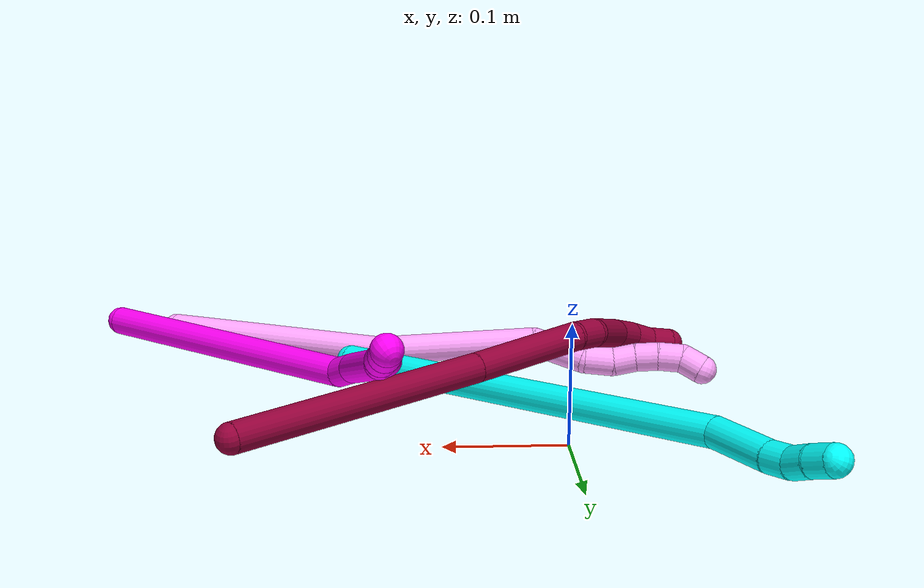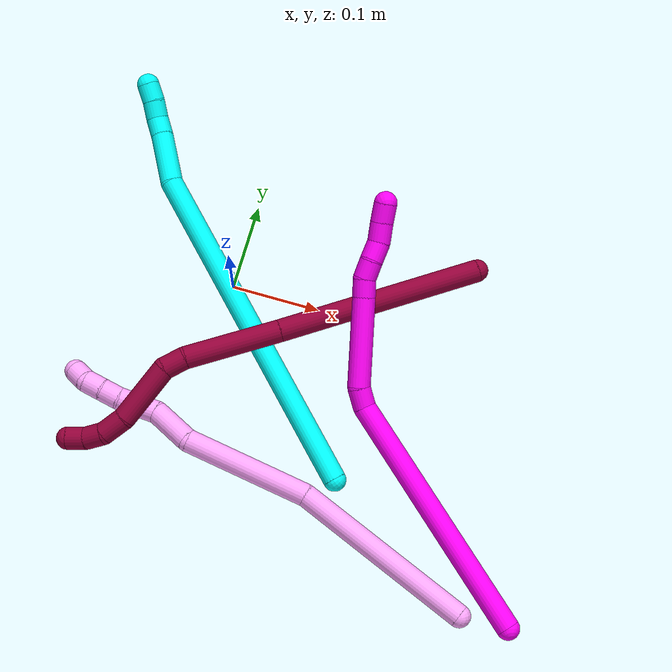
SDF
<sdf version="1.7">
 <world name="default">
  <model name="3">
   <static>0</static>
   <link name="3">
    <collision name="collision-cylinder-e_1_1_4">
     <pose>-0.178518 0.0653 0.00337 -1.51923 -1.21969 1.1717</pose>
     <geometry><cylinder><radius>0.0125</radius><length>0.380232</length></cylinder></geometry>
     <surface>
      <friction><ode><mu>1.16</mu><mu2>1.16</mu2><slip1>0</slip1><slip2>0</slip2></ode></friction>
      <contact><ode><kp>1e+06</kp><kd>1</kd><max_vel>0</max_vel><min_depth>0.001</min_depth></ode></contact>
     </surface>
    </collision>
    <visual name="visual-cylinder-e_1_1_4">
     <pose>-0.178518 0.0653 0.00337 -1.51923 -1.21969 1.1717</pose>
     <geometry><cylinder><radius>0.0125</radius><length>0.380232</length></cylinder></geometry>
     <material><ambient>0.003922 1 0.996078 1</ambient></material>
    </visual>
    <collision name="collision-cylinder-e_2_4_5">
     <pose>-0.385415 0.135057 0.000855 -2.4935 -1.31628 2.3219</pose>
     <geometry><cylinder><radius>0.0125</radius><length>0.058649</length></cylinder></geometry>
     <surface>
      <friction><ode><mu>1.16</mu><mu2>1.16</mu2><slip1>0</slip1><slip2>0</slip2></ode></friction>
      <contact><ode><kp>1e+06</kp><kd>1</kd><max_vel>0</max_vel><min_depth>0.001</min_depth></ode></contact>
     </surface>
    </collision>
    <visual name="visual-cylinder-e_2_4_5">
     <pose>-0.385415 0.135057 0.000855 -2.4935 -1.31628 2.3219</pose>
     <geometry><cylinder><radius>0.0125</radius><length>0.058649</length></cylinder></geometry>
     <material><ambient>0.003922 1 0.996078 1</ambient></material>
    </visual>
    <collision name="collision-cylinder-e_3_5_6">
     <pose>-0.423765 0.142301 -0.006925 -2.16779 -1.24495 1.87042</pose>
     <geometry><cylinder><radius>0.0125</radius><length>0.021048</length></cylinder></geometry>
     <surface>
      <friction><ode><mu>1.16</mu><mu2>1.16</mu2><slip1>0</slip1><slip2>0</slip2></ode></friction>
      <contact><ode><kp>1e+06</kp><kd>1</kd><max_vel>0</max_vel><min_depth>0.001</min_depth></ode></contact>
     </surface>
    </collision>
    <visual name="visual-cylinder-e_3_5_6">
     <pose>-0.423765 0.142301 -0.006925 -2.16779 -1.24495 1.87042</pose>
     <geometry><cylinder><radius>0.0125</radius><length>0.021048</length></cylinder></geometry>
     <material><ambient>0.003922 1 0.996078 1</ambient></material>
    </visual>
    <collision name="collision-cylinder-e_4_6_7">
     <pose>-0.441858 0.149706 -0.012449 -2.23678 -0.944615 1.62064</pose>
     <geometry><cylinder><radius>0.0125</radius><length>0.020049</length></cylinder></geometry>
     <surface>
      <friction><ode><mu>1.16</mu><mu2>1.16</mu2><slip1>0</slip1><slip2>0</slip2></ode></friction>
      <contact><ode><kp>1e+06</kp><kd>1</kd><max_vel>0</max_vel><min_depth>0.001</min_depth></ode></contact>
     </surface>
    </collision>
    <visual name="visual-cylinder-e_4_6_7">
     <pose>-0.441858 0.149706 -0.012449 -2.23678 -0.944615 1.62064</pose>
     <geometry><cylinder><radius>0.0125</radius><length>0.020049</length></cylinder></geometry>
     <material><ambient>0.003922 1 0.996078 1</ambient></material>
    </visual>
    <collision name="collision-cylinder-e_5_7_2">
     <pose>-0.45849 0.159019 -0.018486 -2.04478 -1.01591 1.47796</pose>
     <geometry><cylinder><radius>0.0125</radius><length>0.020022</length></cylinder></geometry>
     <surface>
      <friction><ode><mu>1.16</mu><mu2>1.16</mu2><slip1>0</slip1><slip2>0</slip2></ode></friction>
      <contact><ode><kp>1e+06</kp><kd>1</kd><max_vel>0</max_vel><min_depth>0.001</min_depth></ode></contact>
     </surface>
    </collision>
    <visual name="visual-cylinder-e_5_7_2">
     <pose>-0.45849 0.159019 -0.018486 -2.04478 -1.01591 1.47796</pose>
     <geometry><cylinder><radius>0.0125</radius><length>0.020022</length></cylinder></geometry>
     <material><ambient>0.003922 1 0.996078 1</ambient></material>
    </visual>
    <collision name="collision-sphere-2">
     <pose>-0.466999 0.163711 -0.020893 0 -0 0</pose>
     <geometry><sphere><radius>0.0125</radius></sphere></geometry>
     <surface>
      <friction><ode><mu>1.16</mu><mu2>1.16</mu2><slip1>0</slip1><slip2>0</slip2></ode></friction>
      <contact><ode><kp>1e+06</kp><kd>1</kd><max_vel>0</max_vel><min_depth>0.001</min_depth></ode></contact>
     </surface>
    </collision>
    <visual name="visual-sphere-2">
     <pose>-0.466999 0.163711 -0.020893 0 -0 0</pose>
     <geometry><sphere><radius>0.0125</radius></sphere></geometry>
     <material><ambient>0.003922 1 0.996078 1</ambient></material>
    </visual>
    <collision name="collision-sphere-7">
     <pose>-0.449981 0.154326 -0.016079 0 -0 0</pose>
     <geometry><sphere><radius>0.0125</radius></sphere></geometry>
     <surface>
      <friction><ode><mu>1.16</mu><mu2>1.16</mu2><slip1>0</slip1><slip2>0</slip2></ode></friction>
      <contact><ode><kp>1e+06</kp><kd>1</kd><max_vel>0</max_vel><min_depth>0.001</min_depth></ode></contact>
     </surface>
    </collision>
    <visual name="visual-sphere-7">
     <pose>-0.449981 0.154326 -0.016079 0 -0 0</pose>
     <geometry><sphere><radius>0.0125</radius></sphere></geometry>
     <material><ambient>0.003922 1 0.996078 1</ambient></material>
    </visual>
    <collision name="collision-sphere-6">
     <pose>-0.433736 0.145087 -0.008819 0 -0 0</pose>
     <geometry><sphere><radius>0.0125</radius></sphere></geometry>
     <surface>
      <friction><ode><mu>1.16</mu><mu2>1.16</mu2><slip1>0</slip1><slip2>0</slip2></ode></friction>
      <contact><ode><kp>1e+06</kp><kd>1</kd><max_vel>0</max_vel><min_depth>0.001</min_depth></ode></contact>
     </surface>
    </collision>
    <visual name="visual-sphere-6">
     <pose>-0.433736 0.145087 -0.008819 0 -0 0</pose>
     <geometry><sphere><radius>0.0125</radius></sphere></geometry>
     <material><ambient>0.003922 1 0.996078 1</ambient></material>
    </visual>
    <collision name="collision-sphere-5">
     <pose>-0.413795 0.139514 -0.005031 0 -0 0</pose>
     <geometry><sphere><radius>0.0125</radius></sphere></geometry>
     <surface>
      <friction><ode><mu>1.16</mu><mu2>1.16</mu2><slip1>0</slip1><slip2>0</slip2></ode></friction>
      <contact><ode><kp>1e+06</kp><kd>1</kd><max_vel>0</max_vel><min_depth>0.001</min_depth></ode></contact>
     </surface>
    </collision>
    <visual name="visual-sphere-5">
     <pose>-0.413795 0.139514 -0.005031 0 -0 0</pose>
     <geometry><sphere><radius>0.0125</radius></sphere></geometry>
     <material><ambient>0.003922 1 0.996078 1</ambient></material>
    </visual>
    <collision name="collision-sphere-1">
     <geometry><sphere><radius>0.0125</radius></sphere></geometry>
     <surface>
      <friction><ode><mu>1.16</mu><mu2>1.16</mu2><slip1>0</slip1><slip2>0</slip2></ode></friction>
      <contact><ode><kp>1e+06</kp><kd>1</kd><max_vel>0</max_vel><min_depth>0.001</min_depth></ode></contact>
     </surface>
    </collision>
    <visual name="visual-sphere-1">
     <geometry><sphere><radius>0.0125</radius></sphere></geometry>
     <material><ambient>0.003922 1 0.996078 1</ambient></material>
    </visual>
    <collision name="collision-sphere-4">
     <pose>-0.357035 0.1306 0.006741 0 -0 0</pose>
     <geometry><sphere><radius>0.0125</radius></sphere></geometry>
     <surface>
      <friction><ode><mu>1.16</mu><mu2>1.16</mu2><slip1>0</slip1><slip2>0</slip2></ode></friction>
      <contact><ode><kp>1e+06</kp><kd>1</kd><max_vel>0</max_vel><min_depth>0.001</min_depth></ode></contact>
     </surface>
    </collision>
    <visual name="visual-sphere-4">
     <pose>-0.357035 0.1306 0.006741 0 -0 0</pose>
     <geometry><sphere><radius>0.0125</radius></sphere></geometry>
     <material><ambient>0.003922 1 0.996078 1</ambient></material>
    </visual>
    <inertial>
     <pose>-0.234881 0.083861 0.001132 0 -0 0</pose>
     <mass>0.5</mass>
     <inertia>
      <ixx>0.002036</ixx>
      <ixy>0</ixy>
      <ixz>0</ixz>
      <iyy>0.00556</iyy>
      <iyz>0</iyz>
      <izz>0.002753</izz>
     </inertia>
    </inertial>
   </link>
   <pose>0.170982 -0.183075 0.012463 2.08611 -0.219558 -0.975144</pose>
  </model>
  <model name="4">
   <static>0</static>
   <link name="4">
    <collision name="collision-cylinder-e_1_1_4">
     <pose>-0.074997 -0.068329 0.013271 1.37897 -0.822667 -0.690486</pose>
     <geometry><cylinder><radius>0.0125</radius><length>0.204641</length></cylinder></geometry>
     <surface>
      <friction><ode><mu>1.16</mu><mu2>1.16</mu2><slip1>0</slip1><slip2>0</slip2></ode></friction>
      <contact><ode><kp>1e+06</kp><kd>1</kd><max_vel>0</max_vel><min_depth>0.001</min_depth></ode></contact>
     </surface>
    </collision>
    <visual name="visual-cylinder-e_1_1_4">
     <pose>-0.074997 -0.068329 0.013271 1.37897 -0.822667 -0.690486</pose>
     <geometry><cylinder><radius>0.0125</radius><length>0.204641</length></cylinder></geometry>
     <material><ambient>1 0.65098 0.996078 1</ambient></material>
    </visual>
    <collision name="collision-cylinder-e_2_4_5">
     <pose>-0.190943 -0.188011 0.050245 1.13836 -0.626641 -0.4088</pose>
     <geometry><cylinder><radius>0.0125</radius><length>0.139654</length></cylinder></geometry>
     <surface>
      <friction><ode><mu>1.16</mu><mu2>1.16</mu2><slip1>0</slip1><slip2>0</slip2></ode></friction>
      <contact><ode><kp>1e+06</kp><kd>1</kd><max_vel>0</max_vel><min_depth>0.001</min_depth></ode></contact>
     </surface>
    </collision>
    <visual name="visual-cylinder-e_2_4_5">
     <pose>-0.190943 -0.188011 0.050245 1.13836 -0.626641 -0.4088</pose>
     <geometry><cylinder><radius>0.0125</radius><length>0.139654</length></cylinder></geometry>
     <material><ambient>1 0.65098 0.996078 1</ambient></material>
    </visual>
    <collision name="collision-cylinder-e_3_5_6">
     <pose>-0.249293 -0.256465 0.07175 1.6986 -0.790035 -0.885167</pose>
     <geometry><cylinder><radius>0.0125</radius><length>0.048992</length></cylinder></geometry>
     <surface>
      <friction><ode><mu>1.16</mu><mu2>1.16</mu2><slip1>0</slip1><slip2>0</slip2></ode></friction>
      <contact><ode><kp>1e+06</kp><kd>1</kd><max_vel>0</max_vel><min_depth>0.001</min_depth></ode></contact>
     </surface>
    </collision>
    <visual name="visual-cylinder-e_3_5_6">
     <pose>-0.249293 -0.256465 0.07175 1.6986 -0.790035 -0.885167</pose>
     <geometry><cylinder><radius>0.0125</radius><length>0.048992</length></cylinder></geometry>
     <material><ambient>1 0.65098 0.996078 1</ambient></material>
    </visual>
    <collision name="collision-cylinder-e_4_6_7">
     <pose>-0.272966 -0.284341 0.072357 1.31623 -0.512987 -0.400094</pose>
     <geometry><cylinder><radius>0.0125</radius><length>0.025558</length></cylinder></geometry>
     <surface>
      <friction><ode><mu>1.16</mu><mu2>1.16</mu2><slip1>0</slip1><slip2>0</slip2></ode></friction>
      <contact><ode><kp>1e+06</kp><kd>1</kd><max_vel>0</max_vel><min_depth>0.001</min_depth></ode></contact>
     </surface>
    </collision>
    <visual name="visual-cylinder-e_4_6_7">
     <pose>-0.272966 -0.284341 0.072357 1.31623 -0.512987 -0.400094</pose>
     <geometry><cylinder><radius>0.0125</radius><length>0.025558</length></cylinder></geometry>
     <material><ambient>1 0.65098 0.996078 1</ambient></material>
    </visual>
    <collision name="collision-cylinder-e_5_7_8">
     <pose>-0.28458 -0.302183 0.079988 0.971491 -0.558032 -0.30022</pose>
     <geometry><cylinder><radius>0.0125</radius><length>0.020179</length></cylinder></geometry>
     <surface>
      <friction><ode><mu>1.16</mu><mu2>1.16</mu2><slip1>0</slip1><slip2>0</slip2></ode></friction>
      <contact><ode><kp>1e+06</kp><kd>1</kd><max_vel>0</max_vel><min_depth>0.001</min_depth></ode></contact>
     </surface>
    </collision>
    <visual name="visual-cylinder-e_5_7_8">
     <pose>-0.28458 -0.302183 0.079988 0.971491 -0.558032 -0.30022</pose>
     <geometry><cylinder><radius>0.0125</radius><length>0.020179</length></cylinder></geometry>
     <material><ambient>1 0.65098 0.996078 1</ambient></material>
    </visual>
    <collision name="collision-cylinder-e_6_8_9">
     <pose>-0.296238 -0.316385 0.087994 1.15174 -0.679883 -0.451437</pose>
     <geometry><cylinder><radius>0.0125</radius><length>0.020088</length></cylinder></geometry>
     <surface>
      <friction><ode><mu>1.16</mu><mu2>1.16</mu2><slip1>0</slip1><slip2>0</slip2></ode></friction>
      <contact><ode><kp>1e+06</kp><kd>1</kd><max_vel>0</max_vel><min_depth>0.001</min_depth></ode></contact>
     </surface>
    </collision>
    <visual name="visual-cylinder-e_6_8_9">
     <pose>-0.296238 -0.316385 0.087994 1.15174 -0.679883 -0.451437</pose>
     <geometry><cylinder><radius>0.0125</radius><length>0.020088</length></cylinder></geometry>
     <material><ambient>1 0.65098 0.996078 1</ambient></material>
    </visual>
    <collision name="collision-cylinder-e_7_9_10">
     <pose>-0.308885 -0.331525 0.093213 1.32123 -0.654009 -0.515429</pose>
     <geometry><cylinder><radius>0.0125</radius><length>0.020818</length></cylinder></geometry>
     <surface>
      <friction><ode><mu>1.16</mu><mu2>1.16</mu2><slip1>0</slip1><slip2>0</slip2></ode></friction>
      <contact><ode><kp>1e+06</kp><kd>1</kd><max_vel>0</max_vel><min_depth>0.001</min_depth></ode></contact>
     </surface>
    </collision>
    <visual name="visual-cylinder-e_7_9_10">
     <pose>-0.308885 -0.331525 0.093213 1.32123 -0.654009 -0.515429</pose>
     <geometry><cylinder><radius>0.0125</radius><length>0.020818</length></cylinder></geometry>
     <material><ambient>1 0.65098 0.996078 1</ambient></material>
    </visual>
    <collision name="collision-cylinder-e_8_10_2">
     <pose>-0.321603 -0.346826 0.092665 1.91169 -0.689732 -0.940988</pose>
     <geometry><cylinder><radius>0.0125</radius><length>0.02007</length></cylinder></geometry>
     <surface>
      <friction><ode><mu>1.16</mu><mu2>1.16</mu2><slip1>0</slip1><slip2>0</slip2></ode></friction>
      <contact><ode><kp>1e+06</kp><kd>1</kd><max_vel>0</max_vel><min_depth>0.001</min_depth></ode></contact>
     </surface>
    </collision>
    <visual name="visual-cylinder-e_8_10_2">
     <pose>-0.321603 -0.346826 0.092665 1.91169 -0.689732 -0.940988</pose>
     <geometry><cylinder><radius>0.0125</radius><length>0.02007</length></cylinder></geometry>
     <material><ambient>1 0.65098 0.996078 1</ambient></material>
    </visual>
    <collision name="collision-sphere-2">
     <pose>-0.327988 -0.354122 0.090077 0 -0 0</pose>
     <geometry><sphere><radius>0.0125</radius></sphere></geometry>
     <surface>
      <friction><ode><mu>1.16</mu><mu2>1.16</mu2><slip1>0</slip1><slip2>0</slip2></ode></friction>
      <contact><ode><kp>1e+06</kp><kd>1</kd><max_vel>0</max_vel><min_depth>0.001</min_depth></ode></contact>
     </surface>
    </collision>
    <visual name="visual-sphere-2">
     <pose>-0.327988 -0.354122 0.090077 0 -0 0</pose>
     <geometry><sphere><radius>0.0125</radius></sphere></geometry>
     <material><ambient>1 0.65098 0.996078 1</ambient></material>
    </visual>
    <collision name="collision-sphere-10">
     <pose>-0.315217 -0.33953 0.095253 0 -0 0</pose>
     <geometry><sphere><radius>0.0125</radius></sphere></geometry>
     <surface>
      <friction><ode><mu>1.16</mu><mu2>1.16</mu2><slip1>0</slip1><slip2>0</slip2></ode></friction>
      <contact><ode><kp>1e+06</kp><kd>1</kd><max_vel>0</max_vel><min_depth>0.001</min_depth></ode></contact>
     </surface>
    </collision>
    <visual name="visual-sphere-10">
     <pose>-0.315217 -0.33953 0.095253 0 -0 0</pose>
     <geometry><sphere><radius>0.0125</radius></sphere></geometry>
     <material><ambient>1 0.65098 0.996078 1</ambient></material>
    </visual>
    <collision name="collision-sphere-9">
     <pose>-0.302552 -0.32352 0.091173 0 -0 0</pose>
     <geometry><sphere><radius>0.0125</radius></sphere></geometry>
     <surface>
      <friction><ode><mu>1.16</mu><mu2>1.16</mu2><slip1>0</slip1><slip2>0</slip2></ode></friction>
      <contact><ode><kp>1e+06</kp><kd>1</kd><max_vel>0</max_vel><min_depth>0.001</min_depth></ode></contact>
     </surface>
    </collision>
    <visual name="visual-sphere-9">
     <pose>-0.302552 -0.32352 0.091173 0 -0 0</pose>
     <geometry><sphere><radius>0.0125</radius></sphere></geometry>
     <material><ambient>1 0.65098 0.996078 1</ambient></material>
    </visual>
    <collision name="collision-sphere-4">
     <pose>-0.149994 -0.136657 0.026541 0 -0 0</pose>
     <geometry><sphere><radius>0.0125</radius></sphere></geometry>
     <surface>
      <friction><ode><mu>1.16</mu><mu2>1.16</mu2><slip1>0</slip1><slip2>0</slip2></ode></friction>
      <contact><ode><kp>1e+06</kp><kd>1</kd><max_vel>0</max_vel><min_depth>0.001</min_depth></ode></contact>
     </surface>
    </collision>
    <visual name="visual-sphere-4">
     <pose>-0.149994 -0.136657 0.026541 0 -0 0</pose>
     <geometry><sphere><radius>0.0125</radius></sphere></geometry>
     <material><ambient>1 0.65098 0.996078 1</ambient></material>
    </visual>
    <collision name="collision-sphere-1">
     <geometry><sphere><radius>0.0125</radius></sphere></geometry>
     <surface>
      <friction><ode><mu>1.16</mu><mu2>1.16</mu2><slip1>0</slip1><slip2>0</slip2></ode></friction>
      <contact><ode><kp>1e+06</kp><kd>1</kd><max_vel>0</max_vel><min_depth>0.001</min_depth></ode></contact>
     </surface>
    </collision>
    <visual name="visual-sphere-1">
     <geometry><sphere><radius>0.0125</radius></sphere></geometry>
     <material><ambient>1 0.65098 0.996078 1</ambient></material>
    </visual>
    <collision name="collision-sphere-8">
     <pose>-0.289923 -0.309251 0.084816 0 -0 0</pose>
     <geometry><sphere><radius>0.0125</radius></sphere></geometry>
     <surface>
      <friction><ode><mu>1.16</mu><mu2>1.16</mu2><slip1>0</slip1><slip2>0</slip2></ode></friction>
      <contact><ode><kp>1e+06</kp><kd>1</kd><max_vel>0</max_vel><min_depth>0.001</min_depth></ode></contact>
     </surface>
    </collision>
    <visual name="visual-sphere-8">
     <pose>-0.289923 -0.309251 0.084816 0 -0 0</pose>
     <geometry><sphere><radius>0.0125</radius></sphere></geometry>
     <material><ambient>1 0.65098 0.996078 1</ambient></material>
    </visual>
    <collision name="collision-sphere-5">
     <pose>-0.231891 -0.239365 0.073948 0 -0 0</pose>
     <geometry><sphere><radius>0.0125</radius></sphere></geometry>
     <surface>
      <friction><ode><mu>1.16</mu><mu2>1.16</mu2><slip1>0</slip1><slip2>0</slip2></ode></friction>
      <contact><ode><kp>1e+06</kp><kd>1</kd><max_vel>0</max_vel><min_depth>0.001</min_depth></ode></contact>
     </surface>
    </collision>
    <visual name="visual-sphere-5">
     <pose>-0.231891 -0.239365 0.073948 0 -0 0</pose>
     <geometry><sphere><radius>0.0125</radius></sphere></geometry>
     <material><ambient>1 0.65098 0.996078 1</ambient></material>
    </visual>
    <collision name="collision-sphere-6">
     <pose>-0.266694 -0.273565 0.069553 0 -0 0</pose>
     <geometry><sphere><radius>0.0125</radius></sphere></geometry>
     <surface>
      <friction><ode><mu>1.16</mu><mu2>1.16</mu2><slip1>0</slip1><slip2>0</slip2></ode></friction>
      <contact><ode><kp>1e+06</kp><kd>1</kd><max_vel>0</max_vel><min_depth>0.001</min_depth></ode></contact>
     </surface>
    </collision>
    <visual name="visual-sphere-6">
     <pose>-0.266694 -0.273565 0.069553 0 -0 0</pose>
     <geometry><sphere><radius>0.0125</radius></sphere></geometry>
     <material><ambient>1 0.65098 0.996078 1</ambient></material>
    </visual>
    <collision name="collision-sphere-7">
     <pose>-0.279238 -0.295116 0.075161 0 -0 0</pose>
     <geometry><sphere><radius>0.0125</radius></sphere></geometry>
     <surface>
      <friction><ode><mu>1.16</mu><mu2>1.16</mu2><slip1>0</slip1><slip2>0</slip2></ode></friction>
      <contact><ode><kp>1e+06</kp><kd>1</kd><max_vel>0</max_vel><min_depth>0.001</min_depth></ode></contact>
     </surface>
    </collision>
    <visual name="visual-sphere-7">
     <pose>-0.279238 -0.295116 0.075161 0 -0 0</pose>
     <geometry><sphere><radius>0.0125</radius></sphere></geometry>
     <material><ambient>1 0.65098 0.996078 1</ambient></material>
    </visual>
    <inertial>
     <pose>-0.171563 -0.172774 0.044558 0 -0 0</pose>
     <mass>0.5</mass>
     <inertia><ixx>0.00014</ixx><ixy>0</ixy><ixz>0</ixz><iyy>0.00016</iyy><iyz>0</iyz><izz>0.001353</izz></inertia>
    </inertial>
   </link>
   <pose>0.335013 -0.285508 0.012454 0.542051 0.308435 -1.08296</pose>
  </model>
  <model name="8">
   <static>0</static>
   <link name="8">
    <collision name="collision-cylinder-e_1_1_4">
     <pose>-0.06575 -0.090915 0.022713 1.32598 -0.611821 -0.483606</pose>
     <geometry><cylinder><radius>0.0125</radius><length>0.228949</length></cylinder></geometry>
     <surface>
      <friction><ode><mu>1.16</mu><mu2>1.16</mu2><slip1>0</slip1><slip2>0</slip2></ode></friction>
      <contact><ode><kp>1e+06</kp><kd>1</kd><max_vel>0</max_vel><min_depth>0.001</min_depth></ode></contact>
     </surface>
    </collision>
    <visual name="visual-cylinder-e_1_1_4">
     <pose>-0.06575 -0.090915 0.022713 1.32598 -0.611821 -0.483606</pose>
     <geometry><cylinder><radius>0.0125</radius><length>0.228949</length></cylinder></geometry>
     <material><ambient>0.584314 0 0.227451 1</ambient></material>
    </visual>
    <collision name="collision-cylinder-e_2_4_5">
     <pose>-0.161956 -0.224543 0.054383 1.36411 -0.609306 -0.50001</pose>
     <geometry><cylinder><radius>0.0125</radius><length>0.106437</length></cylinder></geometry>
     <surface>
      <friction><ode><mu>1.16</mu><mu2>1.16</mu2><slip1>0</slip1><slip2>0</slip2></ode></friction>
      <contact><ode><kp>1e+06</kp><kd>1</kd><max_vel>0</max_vel><min_depth>0.001</min_depth></ode></contact>
     </surface>
    </collision>
    <visual name="visual-cylinder-e_2_4_5">
     <pose>-0.161956 -0.224543 0.054383 1.36411 -0.609306 -0.50001</pose>
     <geometry><cylinder><radius>0.0125</radius><length>0.106437</length></cylinder></geometry>
     <material><ambient>0.584314 0 0.227451 1</ambient></material>
    </visual>
    <collision name="collision-cylinder-e_3_5_6">
     <pose>-0.200482 -0.275603 0.067531 1.10539 -0.712448 -0.45122</pose>
     <geometry><cylinder><radius>0.0125</radius><length>0.024687</length></cylinder></geometry>
     <surface>
      <friction><ode><mu>1.16</mu><mu2>1.16</mu2><slip1>0</slip1><slip2>0</slip2></ode></friction>
      <contact><ode><kp>1e+06</kp><kd>1</kd><max_vel>0</max_vel><min_depth>0.001</min_depth></ode></contact>
     </surface>
    </collision>
    <visual name="visual-cylinder-e_3_5_6">
     <pose>-0.200482 -0.275603 0.067531 1.10539 -0.712448 -0.45122</pose>
     <geometry><cylinder><radius>0.0125</radius><length>0.024687</length></cylinder></geometry>
     <material><ambient>0.584314 0 0.227451 1</ambient></material>
    </visual>
    <collision name="collision-cylinder-e_4_6_7">
     <pose>-0.235823 -0.294944 0.089509 0.553611 -0.916715 -0.278537</pose>
     <geometry><cylinder><radius>0.0125</radius><length>0.068729</length></cylinder></geometry>
     <surface>
      <friction><ode><mu>1.16</mu><mu2>1.16</mu2><slip1>0</slip1><slip2>0</slip2></ode></friction>
      <contact><ode><kp>1e+06</kp><kd>1</kd><max_vel>0</max_vel><min_depth>0.001</min_depth></ode></contact>
     </surface>
    </collision>
    <visual name="visual-cylinder-e_4_6_7">
     <pose>-0.235823 -0.294944 0.089509 0.553611 -0.916715 -0.278537</pose>
     <geometry><cylinder><radius>0.0125</radius><length>0.068729</length></cylinder></geometry>
     <material><ambient>0.584314 0 0.227451 1</ambient></material>
    </visual>
    <collision name="collision-cylinder-e_5_7_8">
     <pose>-0.272218 -0.313737 0.114991 0.792088 -0.694293 -0.300286</pose>
     <geometry><cylinder><radius>0.0125</radius><length>0.028519</length></cylinder></geometry>
     <surface>
      <friction><ode><mu>1.16</mu><mu2>1.16</mu2><slip1>0</slip1><slip2>0</slip2></ode></friction>
      <contact><ode><kp>1e+06</kp><kd>1</kd><max_vel>0</max_vel><min_depth>0.001</min_depth></ode></contact>
     </surface>
    </collision>
    <visual name="visual-cylinder-e_5_7_8">
     <pose>-0.272218 -0.313737 0.114991 0.792088 -0.694293 -0.300286</pose>
     <geometry><cylinder><radius>0.0125</radius><length>0.028519</length></cylinder></geometry>
     <material><ambient>0.584314 0 0.227451 1</ambient></material>
    </visual>
    <collision name="collision-cylinder-e_6_8_9">
     <pose>-0.284886 -0.329868 0.128694 0.946109 -0.332262 -0.171219</pose>
     <geometry><cylinder><radius>0.0125</radius><length>0.021729</length></cylinder></geometry>
     <surface>
      <friction><ode><mu>1.16</mu><mu2>1.16</mu2><slip1>0</slip1><slip2>0</slip2></ode></friction>
      <contact><ode><kp>1e+06</kp><kd>1</kd><max_vel>0</max_vel><min_depth>0.001</min_depth></ode></contact>
     </surface>
    </collision>
    <visual name="visual-cylinder-e_6_8_9">
     <pose>-0.284886 -0.329868 0.128694 0.946109 -0.332262 -0.171219</pose>
     <geometry><cylinder><radius>0.0125</radius><length>0.021729</length></cylinder></geometry>
     <material><ambient>0.584314 0 0.227451 1</ambient></material>
    </visual>
    <collision name="collision-cylinder-e_7_9_2">
     <pose>-0.29061 -0.347805 0.138263 1.21575 -0.209645 -0.146139</pose>
     <geometry><cylinder><radius>0.0125</radius><length>0.020949</length></cylinder></geometry>
     <surface>
      <friction><ode><mu>1.16</mu><mu2>1.16</mu2><slip1>0</slip1><slip2>0</slip2></ode></friction>
      <contact><ode><kp>1e+06</kp><kd>1</kd><max_vel>0</max_vel><min_depth>0.001</min_depth></ode></contact>
     </surface>
    </collision>
    <visual name="visual-cylinder-e_7_9_2">
     <pose>-0.29061 -0.347805 0.138263 1.21575 -0.209645 -0.146139</pose>
     <geometry><cylinder><radius>0.0125</radius><length>0.020949</length></cylinder></geometry>
     <material><ambient>0.584314 0 0.227451 1</ambient></material>
    </visual>
    <collision name="collision-sphere-2">
     <pose>-0.292789 -0.357412 0.141824 0 -0 0</pose>
     <geometry><sphere><radius>0.0125</radius></sphere></geometry>
     <surface>
      <friction><ode><mu>1.16</mu><mu2>1.16</mu2><slip1>0</slip1><slip2>0</slip2></ode></friction>
      <contact><ode><kp>1e+06</kp><kd>1</kd><max_vel>0</max_vel><min_depth>0.001</min_depth></ode></contact>
     </surface>
    </collision>
    <visual name="visual-sphere-2">
     <pose>-0.292789 -0.357412 0.141824 0 -0 0</pose>
     <geometry><sphere><radius>0.0125</radius></sphere></geometry>
     <material><ambient>0.584314 0 0.227451 1</ambient></material>
    </visual>
    <collision name="collision-sphere-9">
     <pose>-0.28843 -0.338199 0.134701 0 -0 0</pose>
     <geometry><sphere><radius>0.0125</radius></sphere></geometry>
     <surface>
      <friction><ode><mu>1.16</mu><mu2>1.16</mu2><slip1>0</slip1><slip2>0</slip2></ode></friction>
      <contact><ode><kp>1e+06</kp><kd>1</kd><max_vel>0</max_vel><min_depth>0.001</min_depth></ode></contact>
     </surface>
    </collision>
    <visual name="visual-sphere-9">
     <pose>-0.28843 -0.338199 0.134701 0 -0 0</pose>
     <geometry><sphere><radius>0.0125</radius></sphere></geometry>
     <material><ambient>0.584314 0 0.227451 1</ambient></material>
    </visual>
    <collision name="collision-sphere-4">
     <pose>-0.131499 -0.18183 0.045427 0 -0 0</pose>
     <geometry><sphere><radius>0.0125</radius></sphere></geometry>
     <surface>
      <friction><ode><mu>1.16</mu><mu2>1.16</mu2><slip1>0</slip1><slip2>0</slip2></ode></friction>
      <contact><ode><kp>1e+06</kp><kd>1</kd><max_vel>0</max_vel><min_depth>0.001</min_depth></ode></contact>
     </surface>
    </collision>
    <visual name="visual-sphere-4">
     <pose>-0.131499 -0.18183 0.045427 0 -0 0</pose>
     <geometry><sphere><radius>0.0125</radius></sphere></geometry>
     <material><ambient>0.584314 0 0.227451 1</ambient></material>
    </visual>
    <collision name="collision-sphere-1">
     <geometry><sphere><radius>0.0125</radius></sphere></geometry>
     <surface>
      <friction><ode><mu>1.16</mu><mu2>1.16</mu2><slip1>0</slip1><slip2>0</slip2></ode></friction>
      <contact><ode><kp>1e+06</kp><kd>1</kd><max_vel>0</max_vel><min_depth>0.001</min_depth></ode></contact>
     </surface>
    </collision>
    <visual name="visual-sphere-1">
     <geometry><sphere><radius>0.0125</radius></sphere></geometry>
     <material><ambient>0.584314 0 0.227451 1</ambient></material>
    </visual>
    <collision name="collision-sphere-8">
     <pose>-0.281342 -0.321537 0.122688 0 -0 0</pose>
     <geometry><sphere><radius>0.0125</radius></sphere></geometry>
     <surface>
      <friction><ode><mu>1.16</mu><mu2>1.16</mu2><slip1>0</slip1><slip2>0</slip2></ode></friction>
      <contact><ode><kp>1e+06</kp><kd>1</kd><max_vel>0</max_vel><min_depth>0.001</min_depth></ode></contact>
     </surface>
    </collision>
    <visual name="visual-sphere-8">
     <pose>-0.281342 -0.321537 0.122688 0 -0 0</pose>
     <geometry><sphere><radius>0.0125</radius></sphere></geometry>
     <material><ambient>0.584314 0 0.227451 1</ambient></material>
    </visual>
    <collision name="collision-sphere-5">
     <pose>-0.192413 -0.267256 0.063339 0 -0 0</pose>
     <geometry><sphere><radius>0.0125</radius></sphere></geometry>
     <surface>
      <friction><ode><mu>1.16</mu><mu2>1.16</mu2><slip1>0</slip1><slip2>0</slip2></ode></friction>
      <contact><ode><kp>1e+06</kp><kd>1</kd><max_vel>0</max_vel><min_depth>0.001</min_depth></ode></contact>
     </surface>
    </collision>
    <visual name="visual-sphere-5">
     <pose>-0.192413 -0.267256 0.063339 0 -0 0</pose>
     <geometry><sphere><radius>0.0125</radius></sphere></geometry>
     <material><ambient>0.584314 0 0.227451 1</ambient></material>
    </visual>
    <collision name="collision-sphere-6">
     <pose>-0.208551 -0.283951 0.071724 0 -0 0</pose>
     <geometry><sphere><radius>0.0125</radius></sphere></geometry>
     <surface>
      <friction><ode><mu>1.16</mu><mu2>1.16</mu2><slip1>0</slip1><slip2>0</slip2></ode></friction>
      <contact><ode><kp>1e+06</kp><kd>1</kd><max_vel>0</max_vel><min_depth>0.001</min_depth></ode></contact>
     </surface>
    </collision>
    <visual name="visual-sphere-6">
     <pose>-0.208551 -0.283951 0.071724 0 -0 0</pose>
     <geometry><sphere><radius>0.0125</radius></sphere></geometry>
     <material><ambient>0.584314 0 0.227451 1</ambient></material>
    </visual>
    <collision name="collision-sphere-7">
     <pose>-0.263095 -0.305937 0.107294 0 -0 0</pose>
     <geometry><sphere><radius>0.0125</radius></sphere></geometry>
     <surface>
      <friction><ode><mu>1.16</mu><mu2>1.16</mu2><slip1>0</slip1><slip2>0</slip2></ode></friction>
      <contact><ode><kp>1e+06</kp><kd>1</kd><max_vel>0</max_vel><min_depth>0.001</min_depth></ode></contact>
     </surface>
    </collision>
    <visual name="visual-sphere-7">
     <pose>-0.263095 -0.305937 0.107294 0 -0 0</pose>
     <geometry><sphere><radius>0.0125</radius></sphere></geometry>
     <material><ambient>0.584314 0 0.227451 1</ambient></material>
    </visual>
    <inertial>
     <pose>-0.146981 -0.190382 0.05556 0 -0 0</pose>
     <mass>0.5</mass>
     <inertia>
      <ixx>0.000376</ixx>
      <ixy>0</ixy>
      <ixz>0</ixz>
      <iyy>9.8e-05</iyy>
      <iyz>0</iyz>
      <izz>0.001579</izz>
     </inertia>
    </inertial>
   </link>
   <pose>0.258564 0.080178 0.041084 -3.01417 0.221456 1.55285</pose>
  </model>
  <model name="10">
   <static>0</static>
   <link name="10">
    <collision name="collision-cylinder-e_1_1_4">
     <pose>-0.067942 -0.038451 -0.113411 2.81472 -0.516068 -2.02461</pose>
     <geometry><cylinder><radius>0.0125</radius><length>0.275366</length></cylinder></geometry>
     <surface>
      <friction><ode><mu>1.16</mu><mu2>1.16</mu2><slip1>0</slip1><slip2>0</slip2></ode></friction>
      <contact><ode><kp>1e+06</kp><kd>1</kd><max_vel>0</max_vel><min_depth>0.001</min_depth></ode></contact>
     </surface>
    </collision>
    <visual name="visual-cylinder-e_1_1_4">
     <pose>-0.067942 -0.038451 -0.113411 2.81472 -0.516068 -2.02461</pose>
     <geometry><cylinder><radius>0.0125</radius><length>0.275366</length></cylinder></geometry>
     <material><ambient>1 0 0.964706 1</ambient></material>
    </visual>
    <collision name="collision-cylinder-e_2_4_5">
     <pose>-0.144845 -0.07673 -0.234067 -3.11795 -0.890831 3.09208</pose>
     <geometry><cylinder><radius>0.0125</radius><length>0.02305</length></cylinder></geometry>
     <surface>
      <friction><ode><mu>1.16</mu><mu2>1.16</mu2><slip1>0</slip1><slip2>0</slip2></ode></friction>
      <contact><ode><kp>1e+06</kp><kd>1</kd><max_vel>0</max_vel><min_depth>0.001</min_depth></ode></contact>
     </surface>
    </collision>
    <visual name="visual-cylinder-e_2_4_5">
     <pose>-0.144845 -0.07673 -0.234067 -3.11795 -0.890831 3.09208</pose>
     <geometry><cylinder><radius>0.0125</radius><length>0.02305</length></cylinder></geometry>
     <material><ambient>1 0 0.964706 1</ambient></material>
    </visual>
    <collision name="collision-cylinder-e_3_5_6">
     <pose>-0.186539 -0.060064 -0.273039 -2.66216 -0.741232 2.01864</pose>
     <geometry><cylinder><radius>0.0125</radius><length>0.096955</length></cylinder></geometry>
     <surface>
      <friction><ode><mu>1.16</mu><mu2>1.16</mu2><slip1>0</slip1><slip2>0</slip2></ode></friction>
      <contact><ode><kp>1e+06</kp><kd>1</kd><max_vel>0</max_vel><min_depth>0.001</min_depth></ode></contact>
     </surface>
    </collision>
    <visual name="visual-cylinder-e_3_5_6">
     <pose>-0.186539 -0.060064 -0.273039 -2.66216 -0.741232 2.01864</pose>
     <geometry><cylinder><radius>0.0125</radius><length>0.096955</length></cylinder></geometry>
     <material><ambient>1 0 0.964706 1</ambient></material>
    </visual>
    <collision name="collision-cylinder-e_4_6_7">
     <pose>-0.22667 -0.040409 -0.310836 -2.66153 -0.824376 2.12096</pose>
     <geometry><cylinder><radius>0.0125</radius><length>0.020159</length></cylinder></geometry>
     <surface>
      <friction><ode><mu>1.16</mu><mu2>1.16</mu2><slip1>0</slip1><slip2>0</slip2></ode></friction>
      <contact><ode><kp>1e+06</kp><kd>1</kd><max_vel>0</max_vel><min_depth>0.001</min_depth></ode></contact>
     </surface>
    </collision>
    <visual name="visual-cylinder-e_4_6_7">
     <pose>-0.22667 -0.040409 -0.310836 -2.66153 -0.824376 2.12096</pose>
     <geometry><cylinder><radius>0.0125</radius><length>0.020159</length></cylinder></geometry>
     <material><ambient>1 0 0.964706 1</ambient></material>
    </visual>
    <collision name="collision-cylinder-e_5_7_8">
     <pose>-0.240482 -0.031057 -0.321905 -2.25005 -0.678313 1.27192</pose>
     <geometry><cylinder><radius>0.0125</radius><length>0.020437</length></cylinder></geometry>
     <surface>
      <friction><ode><mu>1.16</mu><mu2>1.16</mu2><slip1>0</slip1><slip2>0</slip2></ode></friction>
      <contact><ode><kp>1e+06</kp><kd>1</kd><max_vel>0</max_vel><min_depth>0.001</min_depth></ode></contact>
     </surface>
    </collision>
    <visual name="visual-cylinder-e_5_7_8">
     <pose>-0.240482 -0.031057 -0.321905 -2.25005 -0.678313 1.27192</pose>
     <geometry><cylinder><radius>0.0125</radius><length>0.020437</length></cylinder></geometry>
     <material><ambient>1 0 0.964706 1</ambient></material>
    </visual>
    <collision name="collision-cylinder-e_6_8_9">
     <pose>-0.252002 -0.018252 -0.333267 -2.33683 -0.507825 1.09512</pose>
     <geometry><cylinder><radius>0.0125</radius><length>0.02101</length></cylinder></geometry>
     <surface>
      <friction><ode><mu>1.16</mu><mu2>1.16</mu2><slip1>0</slip1><slip2>0</slip2></ode></friction>
      <contact><ode><kp>1e+06</kp><kd>1</kd><max_vel>0</max_vel><min_depth>0.001</min_depth></ode></contact>
     </surface>
    </collision>
    <visual name="visual-cylinder-e_6_8_9">
     <pose>-0.252002 -0.018252 -0.333267 -2.33683 -0.507825 1.09512</pose>
     <geometry><cylinder><radius>0.0125</radius><length>0.02101</length></cylinder></geometry>
     <material><ambient>1 0 0.964706 1</ambient></material>
    </visual>
    <collision name="collision-cylinder-e_7_9_10">
     <pose>-0.26507 -0.007004 -0.345629 -2.4839 -0.809923 1.79692</pose>
     <geometry><cylinder><radius>0.0125</radius><length>0.021981</length></cylinder></geometry>
     <surface>
      <friction><ode><mu>1.16</mu><mu2>1.16</mu2><slip1>0</slip1><slip2>0</slip2></ode></friction>
      <contact><ode><kp>1e+06</kp><kd>1</kd><max_vel>0</max_vel><min_depth>0.001</min_depth></ode></contact>
     </surface>
    </collision>
    <visual name="visual-cylinder-e_7_9_10">
     <pose>-0.26507 -0.007004 -0.345629 -2.4839 -0.809923 1.79692</pose>
     <geometry><cylinder><radius>0.0125</radius><length>0.021981</length></cylinder></geometry>
     <material><ambient>1 0 0.964706 1</ambient></material>
    </visual>
    <collision name="collision-cylinder-e_8_10_2">
     <pose>-0.280864 0.002423 -0.356759 -2.39027 -0.839965 1.6947</pose>
     <geometry><cylinder><radius>0.0125</radius><length>0.021042</length></cylinder></geometry>
     <surface>
      <friction><ode><mu>1.16</mu><mu2>1.16</mu2><slip1>0</slip1><slip2>0</slip2></ode></friction>
      <contact><ode><kp>1e+06</kp><kd>1</kd><max_vel>0</max_vel><min_depth>0.001</min_depth></ode></contact>
     </surface>
    </collision>
    <visual name="visual-cylinder-e_8_10_2">
     <pose>-0.280864 0.002423 -0.356759 -2.39027 -0.839965 1.6947</pose>
     <geometry><cylinder><radius>0.0125</radius><length>0.021042</length></cylinder></geometry>
     <material><ambient>1 0 0.964706 1</ambient></material>
    </visual>
    <collision name="collision-sphere-2">
     <pose>-0.288698 0.007216 -0.361891 0 -0 0</pose>
     <geometry><sphere><radius>0.0125</radius></sphere></geometry>
     <surface>
      <friction><ode><mu>1.16</mu><mu2>1.16</mu2><slip1>0</slip1><slip2>0</slip2></ode></friction>
      <contact><ode><kp>1e+06</kp><kd>1</kd><max_vel>0</max_vel><min_depth>0.001</min_depth></ode></contact>
     </surface>
    </collision>
    <visual name="visual-sphere-2">
     <pose>-0.288698 0.007216 -0.361891 0 -0 0</pose>
     <geometry><sphere><radius>0.0125</radius></sphere></geometry>
     <material><ambient>1 0 0.964706 1</ambient></material>
    </visual>
    <collision name="collision-sphere-10">
     <pose>-0.27303 -0.002371 -0.351627 0 -0 0</pose>
     <geometry><sphere><radius>0.0125</radius></sphere></geometry>
     <surface>
      <friction><ode><mu>1.16</mu><mu2>1.16</mu2><slip1>0</slip1><slip2>0</slip2></ode></friction>
      <contact><ode><kp>1e+06</kp><kd>1</kd><max_vel>0</max_vel><min_depth>0.001</min_depth></ode></contact>
     </surface>
    </collision>
    <visual name="visual-sphere-10">
     <pose>-0.27303 -0.002371 -0.351627 0 -0 0</pose>
     <geometry><sphere><radius>0.0125</radius></sphere></geometry>
     <material><ambient>1 0 0.964706 1</ambient></material>
    </visual>
    <collision name="collision-sphere-9">
     <pose>-0.25711 -0.011636 -0.339631 0 -0 0</pose>
     <geometry><sphere><radius>0.0125</radius></sphere></geometry>
     <surface>
      <friction><ode><mu>1.16</mu><mu2>1.16</mu2><slip1>0</slip1><slip2>0</slip2></ode></friction>
      <contact><ode><kp>1e+06</kp><kd>1</kd><max_vel>0</max_vel><min_depth>0.001</min_depth></ode></contact>
     </surface>
    </collision>
    <visual name="visual-sphere-9">
     <pose>-0.25711 -0.011636 -0.339631 0 -0 0</pose>
     <geometry><sphere><radius>0.0125</radius></sphere></geometry>
     <material><ambient>1 0 0.964706 1</ambient></material>
    </visual>
    <collision name="collision-sphere-4">
     <pose>-0.135883 -0.076901 -0.226822 0 -0 0</pose>
     <geometry><sphere><radius>0.0125</radius></sphere></geometry>
     <surface>
      <friction><ode><mu>1.16</mu><mu2>1.16</mu2><slip1>0</slip1><slip2>0</slip2></ode></friction>
      <contact><ode><kp>1e+06</kp><kd>1</kd><max_vel>0</max_vel><min_depth>0.001</min_depth></ode></contact>
     </surface>
    </collision>
    <visual name="visual-sphere-4">
     <pose>-0.135883 -0.076901 -0.226822 0 -0 0</pose>
     <geometry><sphere><radius>0.0125</radius></sphere></geometry>
     <material><ambient>1 0 0.964706 1</ambient></material>
    </visual>
    <collision name="collision-sphere-1">
     <geometry><sphere><radius>0.0125</radius></sphere></geometry>
     <surface>
      <friction><ode><mu>1.16</mu><mu2>1.16</mu2><slip1>0</slip1><slip2>0</slip2></ode></friction>
      <contact><ode><kp>1e+06</kp><kd>1</kd><max_vel>0</max_vel><min_depth>0.001</min_depth></ode></contact>
     </surface>
    </collision>
    <visual name="visual-sphere-1">
     <geometry><sphere><radius>0.0125</radius></sphere></geometry>
     <material><ambient>1 0 0.964706 1</ambient></material>
    </visual>
    <collision name="collision-sphere-8">
     <pose>-0.246894 -0.024867 -0.326904 0 -0 0</pose>
     <geometry><sphere><radius>0.0125</radius></sphere></geometry>
     <surface>
      <friction><ode><mu>1.16</mu><mu2>1.16</mu2><slip1>0</slip1><slip2>0</slip2></ode></friction>
      <contact><ode><kp>1e+06</kp><kd>1</kd><max_vel>0</max_vel><min_depth>0.001</min_depth></ode></contact>
     </surface>
    </collision>
    <visual name="visual-sphere-8">
     <pose>-0.246894 -0.024867 -0.326904 0 -0 0</pose>
     <geometry><sphere><radius>0.0125</radius></sphere></geometry>
     <material><ambient>1 0 0.964706 1</ambient></material>
    </visual>
    <collision name="collision-sphere-5">
     <pose>-0.153807 -0.076559 -0.241311 0 -0 0</pose>
     <geometry><sphere><radius>0.0125</radius></sphere></geometry>
     <surface>
      <friction><ode><mu>1.16</mu><mu2>1.16</mu2><slip1>0</slip1><slip2>0</slip2></ode></friction>
      <contact><ode><kp>1e+06</kp><kd>1</kd><max_vel>0</max_vel><min_depth>0.001</min_depth></ode></contact>
     </surface>
    </collision>
    <visual name="visual-sphere-5">
     <pose>-0.153807 -0.076559 -0.241311 0 -0 0</pose>
     <geometry><sphere><radius>0.0125</radius></sphere></geometry>
     <material><ambient>1 0 0.964706 1</ambient></material>
    </visual>
    <collision name="collision-sphere-6">
     <pose>-0.219271 -0.04357 -0.304766 0 -0 0</pose>
     <geometry><sphere><radius>0.0125</radius></sphere></geometry>
     <surface>
      <friction><ode><mu>1.16</mu><mu2>1.16</mu2><slip1>0</slip1><slip2>0</slip2></ode></friction>
      <contact><ode><kp>1e+06</kp><kd>1</kd><max_vel>0</max_vel><min_depth>0.001</min_depth></ode></contact>
     </surface>
    </collision>
    <visual name="visual-sphere-6">
     <pose>-0.219271 -0.04357 -0.304766 0 -0 0</pose>
     <geometry><sphere><radius>0.0125</radius></sphere></geometry>
     <material><ambient>1 0 0.964706 1</ambient></material>
    </visual>
    <collision name="collision-sphere-7">
     <pose>-0.23407 -0.037248 -0.316907 0 -0 0</pose>
     <geometry><sphere><radius>0.0125</radius></sphere></geometry>
     <surface>
      <friction><ode><mu>1.16</mu><mu2>1.16</mu2><slip1>0</slip1><slip2>0</slip2></ode></friction>
      <contact><ode><kp>1e+06</kp><kd>1</kd><max_vel>0</max_vel><min_depth>0.001</min_depth></ode></contact>
     </surface>
    </collision>
    <visual name="visual-sphere-7">
     <pose>-0.23407 -0.037248 -0.316907 0 -0 0</pose>
     <geometry><sphere><radius>0.0125</radius></sphere></geometry>
     <material><ambient>1 0 0.964706 1</ambient></material>
    </visual>
    <inertial>
     <pose>-0.133297 -0.040232 -0.196097 0 -0 0</pose>
     <mass>0.5</mass>
     <inertia>
      <ixx>-0.002027</ixx>
      <ixy>0</ixy>
      <ixz>0</ixz>
      <iyy>-0.000275</iyy>
      <iyz>0</iyz>
      <izz>0.001354</izz>
     </inertia>
    </inertial>
   </link>
   <pose>0.386057 -0.284573 0.019932 0.263519 1.08595 -0.78491</pose>
  </model>
 </world>
</sdf>
